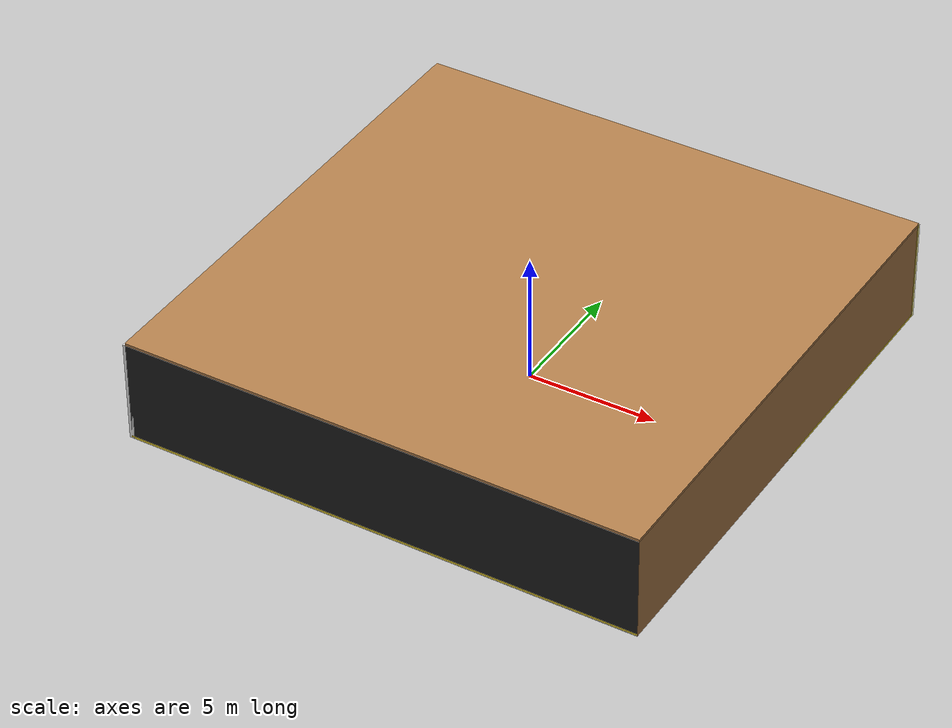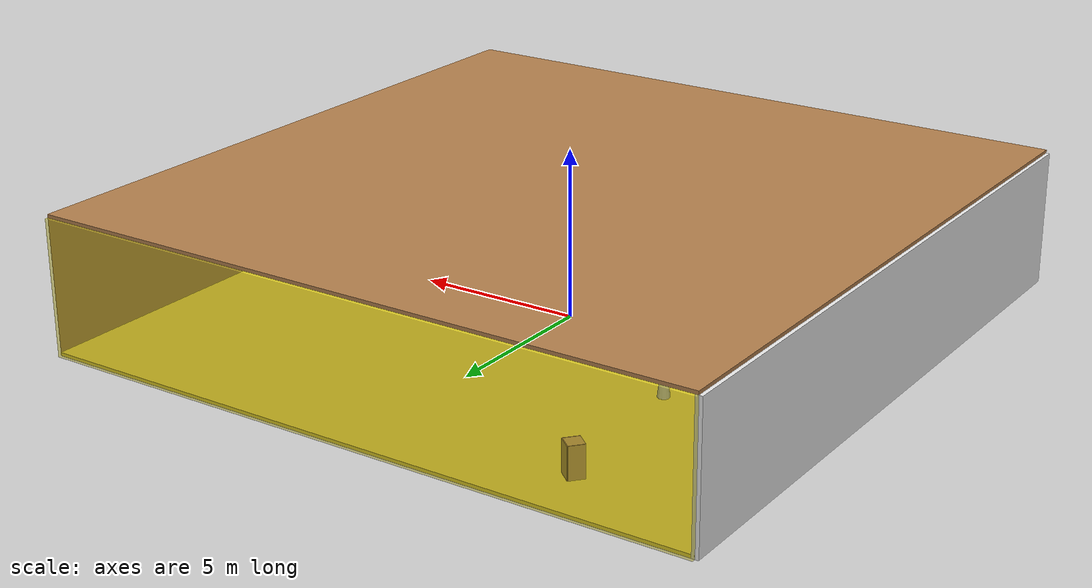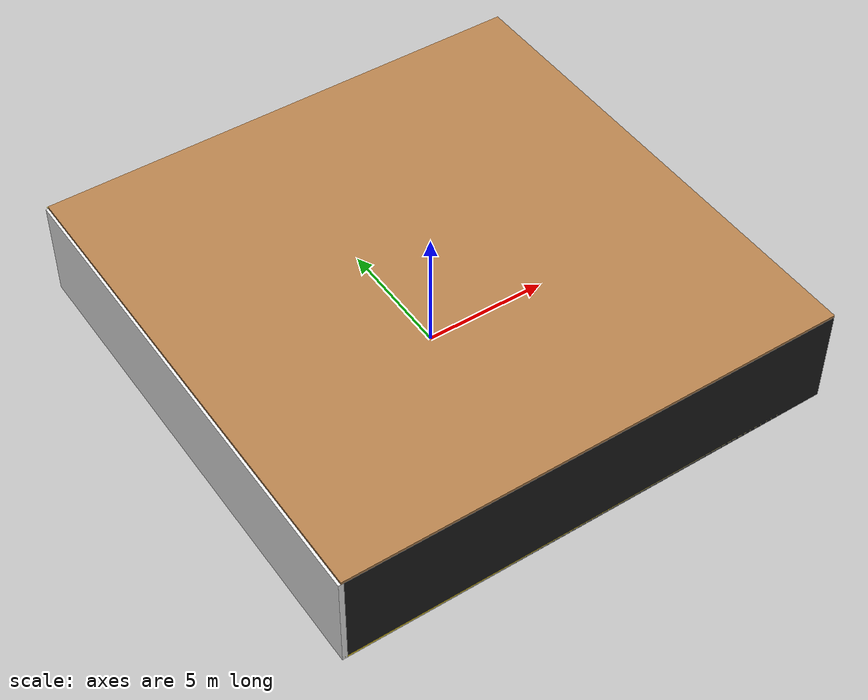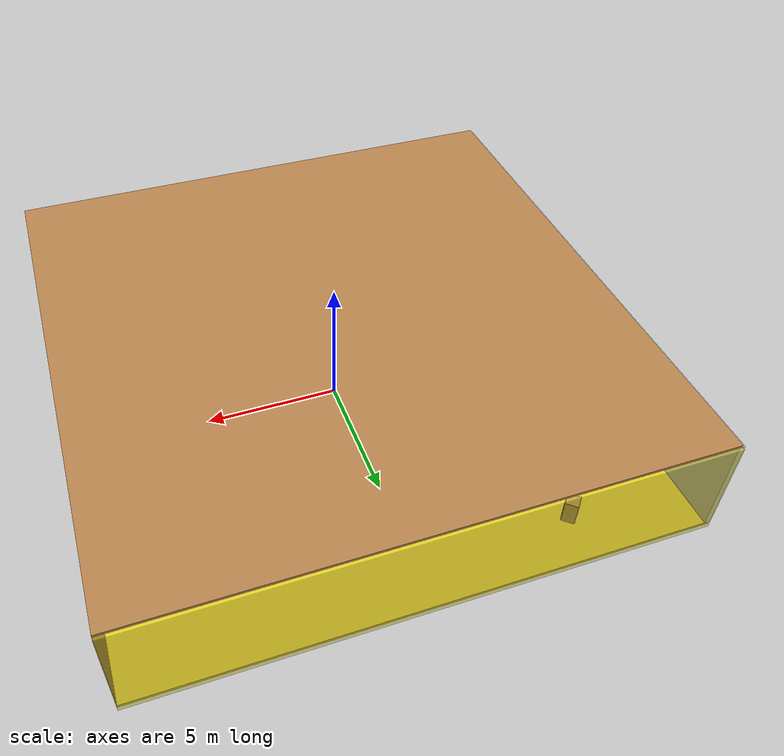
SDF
<sdf version="1.4">
 <world name="default">
  <physics type="ode">
   <max_step_size>0.001</max_step_size>
   <real_time_factor>1</real_time_factor>
   <real_time_update_rate>1000</real_time_update_rate>
   <gravity>0 0 -9.8</gravity>
  </physics>
  <scene><ambient>0.4 0.4 0.4 1</ambient><background>0.7 0.7 0.7 1</background><shadows>1</shadows></scene>
  <model name="Surrounding">
   <static>1</static>
   <link name="Ceiling">
    <collision name="Ceiling_Collision"><geometry><box><size>20 20 0.1</size></box></geometry></collision>
    <visual name="Ceiling_Visual">
     <geometry><box><size>20 20 0.1</size></box></geometry>
     <material>
      <script><uri>file://media/materials/scripts/gazebo.material</uri><name>Gazebo/WoodFloor</name></script>
     </material>
    </visual>
    <pose>0 0 4.05 0 0 0</pose>
   </link>
   <link name="Wall_South">
    <collision name="Wall_South_Collision">
     <geometry><box><size>20 0 4</size></box></geometry>
     <pose>0 0 2 0 -0 0</pose>
    </collision>
    <visual name="Wall_South_Visual">
     <pose>0 0 2 0 -0 0</pose>
     <geometry><box><size>20 0 4</size></box></geometry>
     <material>
      <script><uri>file://media/materials/scripts/gazebo.material</uri><name>Gazebo/Black</name></script>
     </material>
    </visual>
    <velocity_decay><linear>0</linear><angular>0</angular></velocity_decay>
    <pose>0 -10 0 0 -0 0</pose>
   </link>
   <link name="Wall_East">
    <collision name="Wall_21_Collision">
     <geometry><box><size>20 0 4</size></box></geometry>
     <pose>0 0 2 0 -0 0</pose>
    </collision>
    <visual name="Wall_21_Visual">
     <pose>0 0 2 0 -0 0</pose>
     <geometry><box><size>20 0 4</size></box></geometry>
     <material>
      <script><uri>file://media/materials/scripts/gazebo.material</uri><name>Gazebo/Wood</name></script>
     </material>
    </visual>
    <velocity_decay><linear>0</linear><angular>0</angular></velocity_decay>
    <pose>10 0 0 0 -0 1.5708</pose>
   </link>
   <link name="Wall_North">
    <collision name="Wall_22_Collision">
     <geometry><box><size>20 0.2 4</size></box></geometry>
     <pose>0 0 2 0 -0 0</pose>
    </collision>
    <visual name="Wall_22_Visual">
     <pose>0 0 2 0 -0 0</pose>
     <geometry><box><size>20 0.2 4</size></box></geometry>
     <material>
      <script>
       <uri>file://media/materials/scripts/gazebo.material</uri>
       <name>Gazebo/YellowTransparent</name>
      </script>
     </material>
    </visual>
    <velocity_decay><linear>0</linear><angular>0</angular></velocity_decay>
    <pose>0 10 0 0 -0 0</pose>
   </link>
   <link name="Wall_West">
    <collision name="Wall_23_Collision">
     <geometry><box><size>20 0.2 4</size></box></geometry>
     <pose>0 0 2 0 -0 0</pose>
    </collision>
    <visual name="Wall_23_Visual">
     <pose>0 0 2 0 -0 0</pose>
     <geometry><box><size>20 0.2 4</size></box></geometry>
     <material>
      <script><uri>file://media/materials/scripts/gazebo.material</uri><name>Gazebo/White</name></script>
     </material>
    </visual>
    <velocity_decay><linear>0</linear><angular>0</angular></velocity_decay>
    <pose>-10 0 0 0 0 -1.5708</pose>
   </link>
   <link name="Ground_link">
    <collision name="collision">
     <pose>0 0 .05 0 -0 0</pose>
     <geometry><box><size>20 20 0.1</size></box></geometry>
    </collision>
    <visual name="visual">
     <pose>0 0 .05 0 -0 0</pose>
     <geometry><box><size>20 20 0.1</size></box></geometry>
     <material>
      <script><uri>file://media/materials/scripts/gazebo.material</uri><name>Gazebo/ZincYellow</name></script>
     </material>
    </visual>
   </link>
   <static>1</static>
  </model>
  <spherical_coordinates>
   <surface_model>EARTH_WGS84</surface_model>
   <latitude_deg>0</latitude_deg>
   <longitude_deg>0</longitude_deg>
   <elevation>0</elevation>
   <heading_deg>0</heading_deg>
  </spherical_coordinates>
  <light name="lightball_0" type="diffuse">
   <diffuse>0.8 0.8 0.8 1</diffuse>
   <specular>0.2 0.2 0.2 1</specular>
   <attenuation>
    <range>100</range>
    <constant>0.7</constant>
    <linear>0.01</linear>
    <quadratic>0.001</quadratic>
   </attenuation>
   <direction>-0.5 0.1 -0.9</direction>
   <pose>-9.78752221524 -8.69469645826 2.74139781871 0 0 0</pose>
  </light>
  <light name="lightball_1" type="diffuse">
   <diffuse>0.8 0.8 0.8 1</diffuse>
   <specular>0.2 0.2 0.2 1</specular>
   <attenuation>
    <range>100</range>
    <constant>0.7</constant>
    <linear>0.01</linear>
    <quadratic>0.001</quadratic>
   </attenuation>
   <direction>-0.5 0.1 -0.9</direction>
   <pose>8.91338084895 5.33835620616 3.87041340209 0 0 0</pose>
  </light>
  <light name="lightball_2" type="diffuse">
   <diffuse>0.8 0.8 0.8 1</diffuse>
   <specular>0.2 0.2 0.2 1</specular>
   <attenuation>
    <range>100</range>
    <constant>0.7</constant>
    <linear>0.01</linear>
    <quadratic>0.001</quadratic>
   </attenuation>
   <direction>-0.5 0.1 -0.9</direction>
   <pose>-9.07932996514 -1.99458592396 3.19953435862 0 0 0</pose>
  </light>
  <light name="lightball_3" type="diffuse">
   <diffuse>0.8 0.8 0.8 1</diffuse>
   <specular>0.2 0.2 0.2 1</specular>
   <attenuation>
    <range>100</range>
    <constant>0.7</constant>
    <linear>0.01</linear>
    <quadratic>0.001</quadratic>
   </attenuation>
   <direction>-0.5 0.1 -0.9</direction>
   <pose>2.92959109176 9.4516391743 3.19504314668 0 0 0</pose>
  </light>
  <light name="lightball_4" type="diffuse">
   <diffuse>0.8 0.8 0.8 1</diffuse>
   <specular>0.2 0.2 0.2 1</specular>
   <attenuation>
    <range>100</range>
    <constant>0.7</constant>
    <linear>0.01</linear>
    <quadratic>0.001</quadratic>
   </attenuation>
   <direction>-0.5 0.1 -0.9</direction>
   <pose>9.9625851366 6.20430320511 1.04439039857 0 0 0</pose>
  </light>
  <light name="lightball_5" type="diffuse">
   <diffuse>0.8 0.8 0.8 1</diffuse>
   <specular>0.2 0.2 0.2 1</specular>
   <attenuation>
    <range>100</range>
    <constant>0.7</constant>
    <linear>0.01</linear>
    <quadratic>0.001</quadratic>
   </attenuation>
   <direction>-0.5 0.1 -0.9</direction>
   <pose>-2.72416853878 8.93742077372 0.910257334633 0 0 0</pose>
  </light>
  <light name="lightball_6" type="diffuse">
   <diffuse>0.8 0.8 0.8 1</diffuse>
   <specular>0.2 0.2 0.2 1</specular>
   <attenuation>
    <range>100</range>
    <constant>0.7</constant>
    <linear>0.01</linear>
    <quadratic>0.001</quadratic>
   </attenuation>
   <direction>-0.5 0.1 -0.9</direction>
   <pose>3.64994499606 1.98933854981 1.37762643196 0 0 0</pose>
  </light>
  <light name="lightball_7" type="diffuse">
   <diffuse>0.8 0.8 0.8 1</diffuse>
   <specular>0.2 0.2 0.2 1</specular>
   <attenuation>
    <range>100</range>
    <constant>0.7</constant>
    <linear>0.01</linear>
    <quadratic>0.001</quadratic>
   </attenuation>
   <direction>-0.5 0.1 -0.9</direction>
   <pose>8.34615280709 -5.77270220816 3.73743713449 0 0 0</pose>
  </light>
  <light name="lightball_8" type="diffuse">
   <diffuse>0.8 0.8 0.8 1</diffuse>
   <specular>0.2 0.2 0.2 1</specular>
   <attenuation>
    <range>100</range>
    <constant>0.7</constant>
    <linear>0.01</linear>
    <quadratic>0.001</quadratic>
   </attenuation>
   <direction>-0.5 0.1 -0.9</direction>
   <pose>1.00535739728 0.222759430065 2.1661280236 0 0 0</pose>
  </light>
  <light name="lightball_9" type="diffuse">
   <diffuse>0.8 0.8 0.8 1</diffuse>
   <specular>0.2 0.2 0.2 1</specular>
   <attenuation>
    <range>100</range>
    <constant>0.7</constant>
    <linear>0.01</linear>
    <quadratic>0.001</quadratic>
   </attenuation>
   <direction>-0.5 0.1 -0.9</direction>
   <pose>-8.917581027 1.64186590709 2.7655007264 0 0 0</pose>
  </light>
  <include>
   <uri>model://robocup_3Dsim_goal</uri>
   <pose>-7.91637156428 -5.67522401583 0 0 0 0.336211684529</pose>
  </include>
  <include><uri>model://table</uri><pose>-5.05816551235 -0.471035031951 0 0 0 0.296809143838</pose></include>
  <include>
   <uri>model://construction_cone</uri>
   <pose>-5.13289553126 3.31577169747 0 0 0 2.4741154323</pose>
  </include>
  <include><uri>model://cabinet</uri><pose>-5.65318862058 8.29201640607 0 0 0 0.868951658465</pose></include>
  <include>
   <uri>model://textured_shapes</uri>
   <pose>2.26939362851 -7.32155195796 0 0 0 1.53962153595</pose>
  </include>
  <include>
   <uri>model://robocup_3Dsim_goal</uri>
   <pose>4.01128498177 1.21246748237 0 0 0 2.79062779383</pose>
  </include>
 </world>
</sdf>

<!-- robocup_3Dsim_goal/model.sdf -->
<sdf version="1.5">
  <model name="robocup_3d_goal">
    <static>true</static>
    <link name="left_post">
      <pose>0 1.05 0.45 0 0 0</pose>
      <collision name="collision">
        <geometry>
          <cylinder>
            <radius>0.05</radius>
            <length>0.9</length>
          </cylinder>
        </geometry>
      </collision>
      <visual name="visual">
        <geometry>
          <cylinder>
            <radius>0.05</radius>
            <length>0.9</length>
          </cylinder>
        </geometry>
        <material>
          <script>
            <uri>file://media/materials/scripts/gazebo.material</uri>
            <name>Gazebo/ZincYellow</name>
          </script>
        </material>
      </visual>
    </link>
    <link name="left_support_horiz_lower">
      <pose>0.30 1.05 0.01 0 0 0</pose>
      <collision name="collision">
        <geometry>
          <box>
            <size>0.50 0.02 0.02</size>
          </box>
        </geometry>
      </collision>
      <visual name="visual">
        <geometry>
          <box>
            <size>0.50 0.02 0.02</size>
          </box>
        </geometry>
        <material>
          <script>
            <uri>file://media/materials/scripts/gazebo.material</uri>
            <name>Gazebo/White</name>
          </script>
        </material>
      </visual>
    </link>
    <link name="left_support_horiz_upper">
      <pose>0.30 1.05 0.79 0 0 0</pose>
      <collision name="collision">
        <geometry>
          <box>
            <size>0.50 0.02 0.02</size>
          </box>
        </geometry>
      </collision>
      <visual name="visual">
        <geometry>
          <box>
            <size>0.50 0.02 0.02</size>
          </box>
        </geometry>
        <material>
          <script>
            <uri>file://media/materials/scripts/gazebo.material</uri>
            <name>Gazebo/White</name>
          </script>
        </material>
      </visual>
    </link>
    <link name="left_support_vertical">
      <pose>0.56 1.05 0.4 0 1.5708 0</pose>
      <collision name="collision">
        <geometry>
          <box>
            <size>0.80 0.02 0.02</size>
          </box>
        </geometry>
      </collision>
      <visual name="visual">
        <geometry>
          <box>
            <size>0.80 0.02 0.02</size>
          </box>
        </geometry>
        <material>
          <script>
            <uri>file://media/materials/scripts/gazebo.material</uri>
            <name>Gazebo/White</name>
          </script>
        </material>
      </visual>
    </link>
    <link name="right_support_horiz_lower">
      <pose>0.30 -1.05 0.01 0 0 0</pose>
      <collision name="collision">
        <geometry>
          <box>
            <size>0.50 0.02 0.02</size>
          </box>
        </geometry>
      </collision>
      <visual name="visual">
        <geometry>
          <box>
            <size>0.50 0.02 0.02</size>
          </box>
        </geometry>
        <material>
          <script>
            <uri>file://media/materials/scripts/gazebo.material</uri>
            <name>Gazebo/White</name>
          </script>
        </material>
      </visual>
    </link>
    <link name="right_support_horiz_upper">
      <pose>0.30 -1.05 0.79 0 0 0</pose>
      <collision name="collision">
        <geometry>
          <box>
            <size>0.50 0.02 0.02</size>
          </box>
        </geometry>
      </collision>
      <visual name="visual">
        <geometry>
          <box>
            <size>0.50 0.02 0.02</size>
          </box>
        </geometry>
        <material>
          <script>
            <uri>file://media/materials/scripts/gazebo.material</uri>
            <name>Gazebo/White</name>
          </script>
        </material>
      </visual>
    </link>
    <link name="right_support_vertical">
      <pose>0.56 -1.05 0.4 0 1.5708 0</pose>
      <collision name="collision">
        <geometry>
          <box>
            <size>0.80 0.02 0.02</size>
          </box>
        </geometry>
      </collision>
      <visual name="visual">
        <geometry>
          <box>
            <size>0.80 0.02 0.02</size>
          </box>
        </geometry>
        <material>
          <script>
            <uri>file://media/materials/scripts/gazebo.material</uri>
            <name>Gazebo/White</name>
          </script>
        </material>
      </visual>
    </link>
    <link name="center_support_horiz_lower">
      <pose>0.56 0 0.01 0 1.5708 0</pose>
      <collision name="collision">
        <geometry>
          <box>
            <size>0.02 2.08 0.02</size>
          </box>
        </geometry>
      </collision>
      <visual name="visual">
        <geometry>
          <box>
            <size>0.02 2.08 0.02</size>
          </box>
        </geometry>
        <material>
          <script>
            <uri>file://media/materials/scripts/gazebo.material</uri>
            <name>Gazebo/White</name>
          </script>
        </material>
      </visual>
    </link>
    <link name="center_support_horiz_upper">
      <pose>0.56 0 0.79 0 1.5708 0</pose>
      <collision name="collision">
        <geometry>
          <box>
            <size>0.02 2.08 0.02</size>
          </box>
        </geometry>
      </collision>
      <visual name="visual">
        <geometry>
          <box>
            <size>0.02 2.08 0.02</size>
          </box>
        </geometry>
        <material>
          <script>
            <uri>file://media/materials/scripts/gazebo.material</uri>
            <name>Gazebo/White</name>
          </script>
        </material>
      </visual>
    </link>
    <link name="right_post">
      <pose>0 -1.05 0.45 0 0 0</pose>
      <collision name="collision">
        <geometry>
          <cylinder>
            <radius>0.05</radius>
            <length>0.9</length>
          </cylinder>
        </geometry>
      </collision>
      <visual name="visual">
        <geometry>
          <cylinder>
            <radius>0.05</radius>
            <length>0.9</length>
          </cylinder>
        </geometry>
        <material>
          <script>
            <uri>file://media/materials/scripts/gazebo.material</uri>
            <name>Gazebo/ZincYellow</name>
          </script>
        </material>
      </visual>
    </link>
    <link name="crossbar">
      <pose>0 0 0.85 1.57 1.57 0</pose>
      <collision name="collision">
        <geometry>
          <cylinder>
            <radius>0.05</radius>
            <length>2.0</length>
          </cylinder>
        </geometry>
      </collision>
      <visual name="visual">
        <geometry>
          <cylinder>
            <radius>0.05</radius>
            <length>2.0</length>
          </cylinder>
        </geometry>
        <material>
          <script>
            <uri>file://media/materials/scripts/gazebo.material</uri>
            <name>Gazebo/ZincYellow</name>
          </script>
        </material>
      </visual>
    </link>
    <link name="center_net">
      <pose>0.56 0 0.40 0 0 0</pose>
      <collision name="collision">
        <geometry>
          <box>
            <size>0.01 2.1 0.80</size>
          </box>
        </geometry>
      </collision>
      <visual name="visual">
        <geometry>
          <box>
            <size>0.01 2.1 0.80</size>
          </box>
        </geometry>
        <material>
          <script>
            <uri>model://../model_source/models/robocup09_spl_field/materials/scripts/</uri>
            <uri>model://../model_source/models/robocup09_spl_field/materials/textures/</uri>
            <name>RoboCup/Net</name>
          </script>
        </material>
      </visual>
    </link>
    <link name="left_net">
      <pose>0.30 1.05 0.40 0 0 0</pose>
      <collision name="collision">
        <geometry>
          <box>
            <size>0.50 0.01 0.76</size>
          </box>
        </geometry>
      </collision>
      <visual name="visual">
        <geometry>
          <box>
            <size>0.50 0.01 0.76</size>
          </box>
        </geometry>
        <material>
          <script>
            <uri>model://../model_source/models/robocup09_spl_field/materials/scripts/</uri>
            <uri>model://../model_source/models/robocup09_spl_field/materials/textures/</uri>
            <name>RoboCup/Net</name>
          </script>
        </material>
      </visual>
    </link>
    <link name="right_net">
      <pose>0.30 -1.05 0.40 0 0 0</pose>
      <collision name="collision">
        <geometry>
          <box>
            <size>0.50 0.01 0.76</size>
          </box>
        </geometry>
      </collision>
      <visual name="visual">
        <geometry>
          <box>
            <size>0.50 0.01 0.76</size>
          </box>
        </geometry>
        <material>
          <script>
            <uri>model://../model_source/models/robocup09_spl_field/materials/scripts/</uri>
            <uri>model://../model_source/models/robocup09_spl_field/materials/textures/</uri>
            <name>RoboCup/Net</name>
          </script>
        </material>
      </visual>
    </link>
  </model>
</sdf>

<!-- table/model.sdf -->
<sdf version="1.5">
  <model name="table">
    <static>true</static>
    <link name="link">
      <collision name="surface">
        <pose>0 0 1.0 0 0 0</pose>
        <geometry>
          <box>
            <size>1.5 0.8 0.03</size>
          </box>
        </geometry>
        <surface>
          <friction>
            <ode>
              <mu>0.6</mu>
              <mu2>0.6</mu2>
            </ode>
          </friction>
        </surface>
      </collision>
      <visual name="visual1">
        <pose>0 0 1.0 0 0 0</pose>
        <geometry>
          <box>
            <size>1.5 0.8 0.03</size>
          </box>
        </geometry>
        <material>
          <script>
            <uri>model://media/materials/scripts/gazebo.material</uri>
            <name>Gazebo/Wood</name>
          </script>
        </material>
      </visual>
      <collision name="front_left_leg">
        <pose>0.68 0.38 0.5 0 0 0</pose>
        <geometry>
          <cylinder>
            <radius>0.02</radius>
            <length>1.0</length>
          </cylinder>
        </geometry>
      </collision>
      <visual name="front_left_leg">
        <pose>0.68 0.38 0.5 0 0 0</pose>
        <geometry>
          <cylinder>
            <radius>0.02</radius>
            <length>1.0</length>
          </cylinder>
        </geometry>
        <material>
          <script>
            <uri>model://media/materials/scripts/gazebo.material</uri>
            <name>Gazebo/Grey</name>
          </script>
        </material>
      </visual>
      <collision name="front_right_leg">
        <pose>0.68 -0.38 0.5 0 0 0</pose>
        <geometry>
          <cylinder>
            <radius>0.02</radius>
            <length>1.0</length>
          </cylinder>
        </geometry>
      </collision>
      <visual name="front_right_leg">
        <pose>0.68 -0.38 0.5 0 0 0</pose>
        <geometry>
          <cylinder>
            <radius>0.02</radius>
            <length>1.0</length>
          </cylinder>
        </geometry>
        <material>
          <script>
            <uri>model://media/materials/scripts/gazebo.material</uri>
            <name>Gazebo/Grey</name>
          </script>
        </material>
      </visual>
      <collision name="back_right_leg">
        <pose>-0.68 -0.38 0.5 0 0 0</pose>
        <geometry>
          <cylinder>
            <radius>0.02</radius>
            <length>1.0</length>
          </cylinder>
        </geometry>
      </collision>
      <visual name="back_right_leg">
        <pose>-0.68 -0.38 0.5 0 0 0</pose>
        <geometry>
          <cylinder>
            <radius>0.02</radius>
            <length>1.0</length>
          </cylinder>
        </geometry>
        <material>
          <script>
            <uri>model://media/materials/scripts/gazebo.material</uri>
            <name>Gazebo/Grey</name>
          </script>
        </material>
      </visual>
      <collision name="back_left_leg">
        <pose>-0.68 0.38 0.5 0 0 0</pose>
        <geometry>
          <cylinder>
            <radius>0.02</radius>
            <length>1.0</length>
          </cylinder>
        </geometry>
      </collision>
      <visual name="back_left_leg">
        <pose>-0.68 0.38 0.5 0 0 0</pose>
        <geometry>
          <cylinder>
            <radius>0.02</radius>
            <length>1.0</length>
          </cylinder>
        </geometry>
        <material>
          <script>
            <uri>model://media/materials/scripts/gazebo.material</uri>
            <name>Gazebo/Grey</name>
          </script>
        </material>
      </visual>
    </link>
  </model>
</sdf>

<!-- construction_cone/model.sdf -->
<sdf version="1.5">
  <model name="Construction Cone">
    <link name="link">
      <collision name="collision">
        <geometry>
          <mesh>
            <scale>10 10 10</scale>
            <uri>file://isr-testbed/construction_cone/meshes/construction_cone.dae</uri>
          </mesh>
        </geometry>
      </collision>
      <visual name="visual">
        <geometry>
          <mesh>
            <scale>10 10 10</scale>
            <uri>file://isr-testbed/construction_cone/meshes/construction_cone.dae</uri>
          </mesh>
        </geometry>
      </visual>
    </link>
  </model>
</sdf>

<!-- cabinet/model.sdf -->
<sdf version="1.5">
  <model name="cabinet">
    <static>true</static>
    <link name="cabinet_bottom_plate">
      <inertial>
        <pose>0 0 -1 0 0 0</pose>
        <inertia>
          <ixx>2.050000</ixx>
          <ixy>0</ixy>
          <ixz>0</ixz>
          <iyy>2.050000</iyy>
          <iyz>0</iyz>
          <izz>2.050000</izz>
        </inertia>
        <mass>25.000000</mass>
      </inertial>
      <collision name="cabinet_bottom_plate_geom">
        <pose>0 0 0.010000 0 0 0</pose>
        <geometry>
          <box>
            <size>0.450000 0.450000 0.020000</size>
          </box>
        </geometry>
      </collision>
      <visual name="cabinet_bottom_plate_geom_visual">
        <pose>0 0 0.010000 0 0 0</pose>
        <geometry>
          <box>
            <size>0.450000 0.450000 0.020000</size>
          </box>
        </geometry>
        <material>
          <script>
            <uri>model://media/materials/scripts/gazebo.material</uri>
            <name>Gazebo/Wood</name>
          </script>
        </material>
      </visual>
      <collision name="cabinet_bottom_plate_geom_cabinet_back_plate">
        <pose>0.235000 0 0.510000 0 0 0</pose>
        <geometry>
          <box>
            <size>0.020000 0.450000 1.020000</size>
          </box>
        </geometry>
      </collision>
      <visual name="cabinet_bottom_plate_geom_cabinet_back_plate_visual">
        <pose>0.235000 0 0.510000 0 0 0</pose>
        <geometry>
          <box>
            <size>0.020000 0.450000 1.020000</size>
          </box>
        </geometry>
        <material>
          <script>
            <uri>model://media/materials/scripts/gazebo.material</uri>
            <name>Gazebo/Wood</name>
          </script>
        </material>
      </visual>
      <collision name="cabinet_bottom_plate_geom_cabinet_left_plate">
        <pose>0 0.235000 0.510000 0 0 0</pose>
        <geometry>
          <box>
            <size>0.450000 0.020000 1.020000</size>
          </box>
        </geometry>
      </collision>
      <visual name="cabinet_bottom_plate_geom_cabinet_left_plate_visual">
        <pose>0 0.235000 0.510000 0 0 0</pose>
        <geometry>
          <box>
            <size>0.450000 0.020000 1.020000</size>
          </box>
        </geometry>
        <material>
          <script>
            <uri>model://media/materials/scripts/gazebo.material</uri>
            <name>Gazebo/Wood</name>
          </script>
        </material>
      </visual>
      <collision name="cabinet_bottom_plate_geom_cabinet_middle_plate">
        <pose>0 0 0.510000 0 0 0</pose>
        <geometry>
          <box>
            <size>0.450000 0.450000 0.020000</size>
          </box>
        </geometry>
      </collision>
      <visual name="cabinet_bottom_plate_geom_cabinet_middle_plate_visual">
        <pose>0 0 0.510000 0 0 0</pose>
        <geometry>
          <box>
            <size>0.450000 0.450000 0.020000</size>
          </box>
        </geometry>
        <material>
          <script>
            <uri>model://media/materials/scripts/gazebo.material</uri>
            <name>Gazebo/Wood</name>
          </script>
        </material>
      </visual>
      <collision name="cabinet_bottom_plate_geom_cabinet_right_plate">
        <pose>0 -0.235000 0.510000 0 0 0</pose>
        <geometry>
          <box>
            <size>0.450000 0.020000 1.020000</size>
          </box>
        </geometry>
      </collision>
      <visual name="cabinet_bottom_plate_geom_cabinet_right_plate_visual">
        <pose>0 -0.235000 0.510000 0 0 0</pose>
        <geometry>
          <box>
            <size>0.450000 0.020000 1.020000</size>
          </box>
        </geometry>
        <material>
          <script>
            <uri>model://media/materials/scripts/gazebo.material</uri>
            <name>Gazebo/Wood</name>
          </script>
        </material>
      </visual>
      <collision name="cabinet_bottom_plate_geom_cabinet_top_plate">
        <pose>0 0 1.010000 0 0 0</pose>
        <geometry>
          <box>
            <size>0.450000 0.450000 0.020000</size>
          </box>
        </geometry>
      </collision>
      <visual name="cabinet_bottom_plate_geom_cabinet_top_plate_visual">
        <pose>0 0 1.010000 0 0 0</pose>
        <geometry>
          <box>
            <size>0.450000 0.450000 0.020000</size>
          </box>
        </geometry>
        <material>
          <script>
            <uri>model://media/materials/scripts/gazebo.material</uri>
            <name>Gazebo/Wood</name>
          </script>
        </material>
      </visual>
    </link>
  </model>
</sdf>

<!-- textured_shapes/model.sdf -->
<sdf version="1.6">
  <model name="textured_shapes">
    <pose>0 0 0.5 0 0 0</pose>
    <link name="box">
      <pose>0 -1.5 0 0 0 0</pose>
      <collision name="collision">
        <geometry>
          <box>
            <size>1 1 1</size>
          </box>
        </geometry>
      </collision>
      <visual name="visual">
        <geometry>
          <box>
            <size>1 1 1</size>
          </box>
        </geometry>
        <material>
          <script>
            <uri>model://../model_source/models/textured_shapes/materials/scripts</uri>
            <uri>model://../model_source/models/textured_shapes/materials/textures</uri>
            <name>TexturedShape/Squares</name>
          </script>
        </material>
      </visual>
    </link>
    <link name="sphere">
      <collision name="collision">
        <geometry>
          <sphere>
            <radius>0.5</radius>
          </sphere>
        </geometry>
      </collision>
      <visual name="visual">
        <geometry>
          <sphere>
            <radius>0.5</radius>
          </sphere>
        </geometry>
        <material>
          <script>
            <uri>model://../model_source/models/textured_shapes/materials/scripts</uri>
            <uri>model://../model_source/models/textured_shapes/materials/textures</uri>
            <name>TexturedShape/Squares</name>
          </script>
        </material>
      </visual>
    </link>
    <link name="cylinder">
      <pose>0 1.5 0 0 0 0</pose>
      <collision name="collision">
        <geometry>
          <cylinder>
            <radius>0.5</radius>
            <length>1</length>
          </cylinder>
        </geometry>
      </collision>
      <visual name="visual">
        <geometry>
          <cylinder>
            <radius>0.5</radius>
            <length>1</length>
          </cylinder>
        </geometry>
        <material>
          <script>
            <uri>model://../model_source/models/textured_shapes/materials/scripts</uri>
            <uri>model://../model_source/models/textured_shapes/materials/textures</uri>
            <name>TexturedShape/Squares</name>
          </script>
        </material>
      </visual>
    </link>
  </model>
</sdf>
